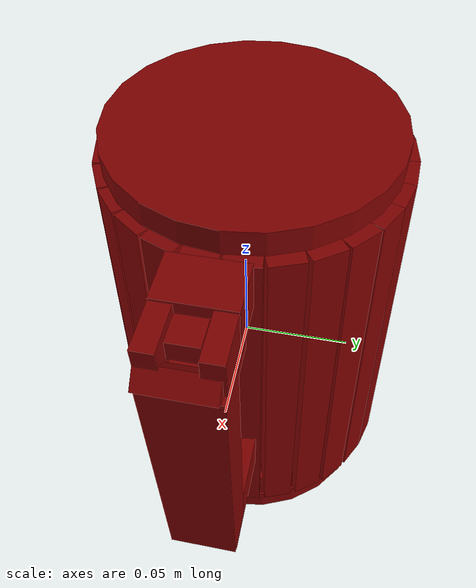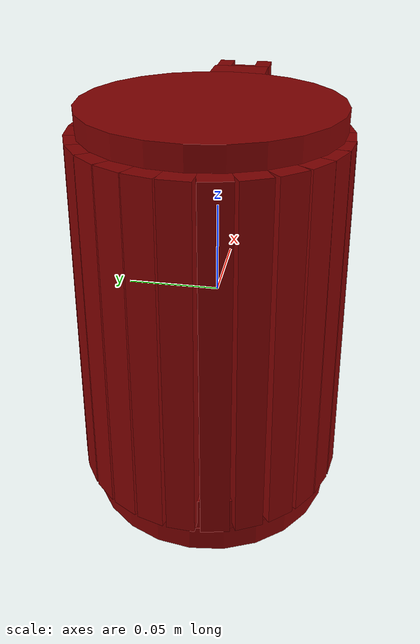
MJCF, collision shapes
<?xml version='1.0' encoding='UTF-8'?>
<mujoco model="model">
  <compiler angle="radian"/>
  <asset>
    <mesh file="visuals/Body001.obj" name="Body001_vis"/>
    <mesh file="visuals/Button001.obj" name="Button001_vis"/>
    <mesh file="visuals/Handle001.obj" name="Handle001_vis"/>
    <mesh file="visuals/Lever001.obj" name="Lever001_vis"/>
    <mesh file="visuals/Lid001.obj" name="Lid001_vis"/>
    <texture file="visuals/T_BC001.png" name="Body001_material" type="2d"/>
    <material name="Body001_material" rgba="1 1 1 1.0" texture="Body001_material" shininess="0.5" specular="0.3103448502657381"/>
    <texture file="visuals/T_BC001.png" name="Handle001_material" type="2d"/>
    <material name="Handle001_material" rgba="1 1 1 1.0" texture="Handle001_material" shininess="0.5" specular="0.3103448502657381"/>
    <texture file="visuals/T_BC001.png" name="Button001_material" type="2d"/>
    <material name="Button001_material" rgba="1 1 1 1.0" texture="Button001_material" shininess="0.5" specular="0.3103448502657381"/>
    <texture file="visuals/T_BC001.png" name="Lever001_material" type="2d"/>
    <material name="Lever001_material" rgba="1 1 1 1.0" texture="Lever001_material" shininess="0.5" specular="0.3103448502657381"/>
    <texture file="visuals/T_BC001.png" name="Lid001_material" type="2d"/>
    <material name="Lid001_material" rgba="1 1 1 1.0" texture="Lid001_material" shininess="0.5" specular="0.3103448502657381"/>
  </asset>
  <default>
    <default class="visual">
      <geom conaffinity="0" contype="0" group="1" type="mesh"/>
    </default>
    <default class="collision">
      <geom group="0" rgba="0.5 0 0 0.5"/>
    </default>
    <default class="spawn">
      <geom group="0" rgba="1 1 1 0.5" contype="0" conaffinity="0"/>
      <site group="0" rgba="1 1 1 0.5"/>
    </default>
    <default class="region">
      <geom group="1" conaffinity="0" contype="0" rgba="0 1 0 0"/>
    </default>
  </default>
  <worldbody>
    <body>
      <body name="object">
        <geom mesh="Body001_vis" type="mesh" solimp="0.998 0.998 0.001" solref="0.001 1" density="100" friction="0.95 0.3 0.1" class="visual" material="Body001_material"/>
        <geom class="collision" type="cylinder" pos="-0.019637 -0.000001 -0.101220" size="0.0678660050034523 0.007532762363553047" quat="1.0 0.0 0.0 0.0"/>
        <body name="Handle001">
          <joint axis="0.0 0.0 1.0" pos="-0.000283 -0.000001 0.006386" limited="true" name="Handle001_joint" range="0.0 0.1" type="slide" damping="1" frictionloss="1" armature=".01" stiffness="0.05"/>
          <geom mesh="Handle001_vis" type="mesh" solimp="0.998 0.998 0.001" solref="0.001 1" density="100" friction="0.95 0.3 0.1" class="visual" material="Handle001_material"/>
          <geom class="collision" type="box" pos="-0.020875 -0.063769 0.003229" size="0.007380795199424028 0.0054064602591097355 0.09264536201953888" quat="0.9999023079872131 -0.013977143913507462 -3.1035493982550703e-18 -1.4061116286136606e-24"/>
          <geom class="collision" type="box" pos="-0.006562 -0.062156 0.003229" size="0.007380795665085316 0.005406459793448448 0.09264536201953888" quat="0.9936127662658691 -0.013889258727431297 -0.0015652369474992156 0.11197458952665329"/>
          <geom class="collision" type="box" pos="0.007908 -0.056968 0.003229" size="0.007380795199424028 0.005406459793448448 0.09264536201953888" quat="0.9731060862541199 -0.013602576218545437 -0.003214121563360095 0.2299330085515976"/>
          <geom class="collision" type="box" pos="0.020787 -0.048449 0.003229" size="0.007380795665085316 0.005406459793448448 0.09264536201953888" quat="0.9384636878967285 -0.013118329457938671 -0.0048239147290587425 0.3450949788093567"/>
          <geom class="collision" type="box" pos="0.031343 -0.036995 0.003229" size="0.007380795199424028 0.005406459793448448 0.09264536201953888" quat="0.8897600769996643 -0.01243752334266901 -0.0063772015273571014 0.4562145173549652"/>
          <geom class="collision" type="box" pos="0.038761 -0.023526 0.003229" size="0.007380795199424028 0.0054064602591097355 0.09264536201953888" quat="0.8288372159004211 -0.011585910804569721 -0.007818393409252167 0.5593152046203613"/>
          <geom class="collision" type="box" pos="0.042872 -0.007940 0.003229" size="0.007380795665085316 0.0054064602591097355 0.09264536201953888" quat="0.7522096037864685 -0.010514771565794945 -0.00920870155096054 0.6587756276130676"/>
          <geom class="collision" type="box" pos="0.042996 0.008029 0.003229" size="0.007380795665085316 0.005406459793448448 0.09264536201953888" quat="0.6645917892456055 -0.009290005080401897 -0.010443010367453098 0.7470759153366089"/>
          <geom class="collision" type="box" pos="0.039290 0.023248 0.003229" size="0.007380794733762741 0.005406459793448448 0.09264536201953888" quat="0.568663477897644 -0.007949069142341614 -0.01149665005505085 0.8224515318870544"/>
          <geom class="collision" type="box" pos="0.031993 0.037153 0.003229" size="0.007380795199424028 0.005406459793448448 0.09264536201953888" quat="0.4639919400215149 -0.0064859166741371155 -0.012381174601614475 0.8857291340827942"/>
          <geom class="collision" type="box" pos="0.021531 0.048131 0.003213" size="0.007380795665085316 0.0059713320806622505 0.09264536201953888" quat="0.3559047281742096 -0.004975018557161093 -0.013061768375337124 0.934417724609375"/>
          <geom class="collision" type="box" pos="0.009283 0.056796 0.003216" size="0.007380795199424028 0.0058844005689024925 0.09264536201953888" quat="0.24354730546474457 -0.003404434537515044 -0.013556243851780891 0.9697883129119873"/>
          <geom class="collision" type="box" pos="-0.003630 0.061843 0.003211" size="0.007380795199424028 0.006031757686287165 0.09264536201953888" quat="0.13666599988937378 -0.0019103848608210683 -0.013845977373421192 0.9905185699462891"/>
          <geom class="collision" type="box" pos="-0.017693 0.064117 0.003211" size="0.007380795199424028 0.006057980004698038 0.09264536947011948" quat="0.024998819455504417 -0.00034944870276376605 -0.013972948305308819 0.999589741230011"/>
          <geom class="collision" type="box" pos="-0.031776 0.063096 0.003206" size="0.007380795199424028 0.006215929519385099 0.09264536947011948" quat="0.086149200797081 -0.0012042473535984755 0.013925343751907349 -0.9961841702461243"/>
          <geom class="collision" type="box" pos="-0.045214 0.058937 0.003200" size="0.007380795199424028 0.006448398344218731 0.09264536201953888" quat="0.19614286720752716 -0.002741793403401971 0.013705610297620296 -0.9804757237434387"/>
          <geom class="collision" type="box" pos="-0.057430 0.052163 0.003200" size="0.007380795199424028 0.00645945779979229 0.09264536201953888" quat="0.3031933009624481 -0.0042381915263831615 0.013319101184606552 -0.9528265595436096"/>
          <geom class="collision" type="box" pos="-0.067970 0.042663 0.003198" size="0.007380795199424028 0.006530726794153452 0.09264536201953888" quat="0.4082055687904358 -0.005706107243895531 0.012759349308907986 -0.9127830266952515"/>
          <geom class="collision" type="box" pos="-0.076199 0.030712 0.003193" size="0.007380795665085316 0.006699009332805872 0.09264536947011948" quat="0.5104392170906067 -0.007135198917239904 0.012018783017992973 -0.8598002791404724"/>
          <geom class="collision" type="box" pos="-0.081811 0.017606 0.003200" size="0.007380795199424028 0.006434462033212185 0.09264536201953888" quat="0.6042205095291138 -0.008446104824543 0.011136606335639954 -0.7966945767402649"/>
          <geom class="collision" type="box" pos="-0.084093 0.003131 0.003200" size="0.007380795199424028 0.006444517057389021 0.09264536201953888" quat="0.6924059987068176 -0.009678809903562069 0.010083721950650215 -0.7213727235794067"/>
          <geom class="collision" type="box" pos="-0.082858 -0.012237 0.003200" size="0.007380795199424028 0.006429573055356741 0.09264536201953888" quat="0.7751274108886719 -0.0108351344242692 0.008829537779092789 -0.6316503286361694"/>
          <geom class="collision" type="box" pos="-0.078135 -0.026869 0.003206" size="0.007380795199424028 0.0062337275594472885 0.09264536201953888" quat="0.8460131287574768 -0.01182600762695074 0.007450282108038664 -0.5329788327217102"/>
          <geom class="collision" type="box" pos="-0.069672 -0.040378 0.003211" size="0.007380795199424028 0.006033082026988268 0.09264536201953888" quat="0.9061471819877625 -0.012666638940572739 0.0059091695584356785 -0.42273154854774475"/>
          <geom class="collision" type="box" pos="-0.058592 -0.050700 0.003210" size="0.007380795665085316 0.00609113834798336 0.09264536201953888" quat="0.9499987959861755 -0.013279573060572147 0.004360465332865715 -0.3119405210018158"/>
          <geom class="collision" type="box" pos="-0.046591 -0.057948 0.003217" size="0.007380795199424028 0.005824490915983915 0.09264536201953888" quat="0.9785315990447998 -0.013678422197699547 0.0028742935974150896 -0.20562231540679932"/>
          <geom class="collision" type="box" pos="-0.032762 -0.062446 0.003223" size="0.007380795199424028 0.0056175231002271175 0.09264536201953888" quat="0.9955569505691528 -0.013916447758674622 0.0013016596203669906 -0.09311829507350922"/>
          <geom class="collision" type="box" pos="0.087768 -0.001471 0.021863" size="0.009237316437065601 0.015317178331315517 0.06579349935054779" quat="1.0 0.0 0.0 0.0"/>
          <geom class="collision" type="box" pos="0.062986 -0.001471 0.094529" size="0.010538110509514809 0.015317178331315517 0.011243673972785473" quat="1.0 0.0 0.0 0.0"/>
          <geom class="collision" type="box" pos="0.067924 -0.001471 -0.034910" size="0.027031200006604195 0.015317169018089771 0.011243658140301704" quat="1.0 0.0 0.0 0.0"/>
          <geom class="collision" type="cylinder" pos="-0.020097 -0.000479 -0.083548" size="0.06749360263347626 0.009196448139846325" quat="1.0 0.0 0.0 0.0"/>
          <geom class="collision" type="box" pos="0.079445 -0.012584 0.090296" size="0.014087814837694168 0.004204140044748783 0.01446246076375246" quat="1.0 0.0 0.0 0.0"/>
          <geom class="collision" type="box" pos="0.093310 -0.002272 0.091143" size="0.004896302707493305 0.014516595751047134 0.0037182148080319166" quat="0.9207598567008972 1.8260609445033696e-15 0.39012986421585083 5.241738776362581e-08"/>
          <geom class="collision" type="box" pos="0.079445 0.009355 0.090296" size="0.014087814837694168 0.004204140044748783 0.014462457969784737" quat="1.0 0.0 0.0 0.0"/>
          <body name="Button001">
            <joint axis="0.0 0.0 -1.0" pos="-0.000284 -0.000002 -0.093095" limited="true" name="Button001_joint" range="0.0 0.001" type="slide" damping="1" frictionloss="1" armature=".01" stiffness="0.6" springref="-0.3"/>
            <geom mesh="Button001_vis" type="mesh" solimp="0.998 0.998 0.001" solref="0.001 1" density="100" friction="0.95 0.3 0.1" class="visual" material="Button001_material"/>
            <geom class="collision" type="box" pos="0.081836 -0.001471 0.099078" size="0.00587012292817235 0.006037034559994936 0.004397301468998194" quat="1.0 0.0 0.0 0.0"/>
          </body>
          <body name="Lever001">
            <joint axis="0.0 1.0 0.0" pos="0.043259 -0.000115 -0.072389" limited="true" name="Lever001_joint" range="0.0 0.3490658503988659" type="hinge" damping="1" frictionloss="1" armature=".01" stiffness="1" springref="-1"/>
            <geom mesh="Lever001_vis" type="mesh" solimp="0.998 0.998 0.001" solref="0.001 1" density="100" friction="0.95 0.3 0.1" class="visual" material="Lever001_material"/>
            <geom class="collision" type="box" pos="0.068698 -0.000076 -0.072033" size="0.014857431873679161 0.008279125206172466 0.0039036166854202747" quat="1.0 0.0 0.0 0.0"/>
          </body>
          <body name="Lid001">
            <joint axis="0.0 1.0 0.0" pos="0.049426 -0.000000 0.105576" limited="true" name="Lid001_joint" range="0.0 1.5707963267948966" type="hinge" damping="1" frictionloss="1" armature=".01" stiffness="0.05"/>
            <geom mesh="Lid001_vis" type="mesh" solimp="0.998 0.998 0.001" solref="0.001 1" density="100" friction="0.95 0.3 0.1" class="visual" material="Lid001_material"/>
            <geom class="collision" type="cylinder" pos="-0.020304 -0.000001 0.103264" size="0.06299818307161331 0.005698506720364094" quat="1.0 0.0 0.0 0.0"/>
          </body>
        </body>
        <geom class="region" name="reg_main" type="box" pos="0.0 0.0 0.0" size="0.097138 0.067668 0.109401"/>
      </body>
    </body>
  </worldbody>
  <actuator>
    <motor name="Handle001_joint_actuator" joint="Handle001_joint" gear="20"/>
    <motor name="Button001_joint_actuator" joint="Button001_joint" gear="0.5"/>
    <motor name="Lever001_joint_actuator" joint="Lever001_joint" gear="5"/>
    <motor name="Lid001_joint_actuator" joint="Lid001_joint" gear="5"/>
  </actuator>
</mujoco>
